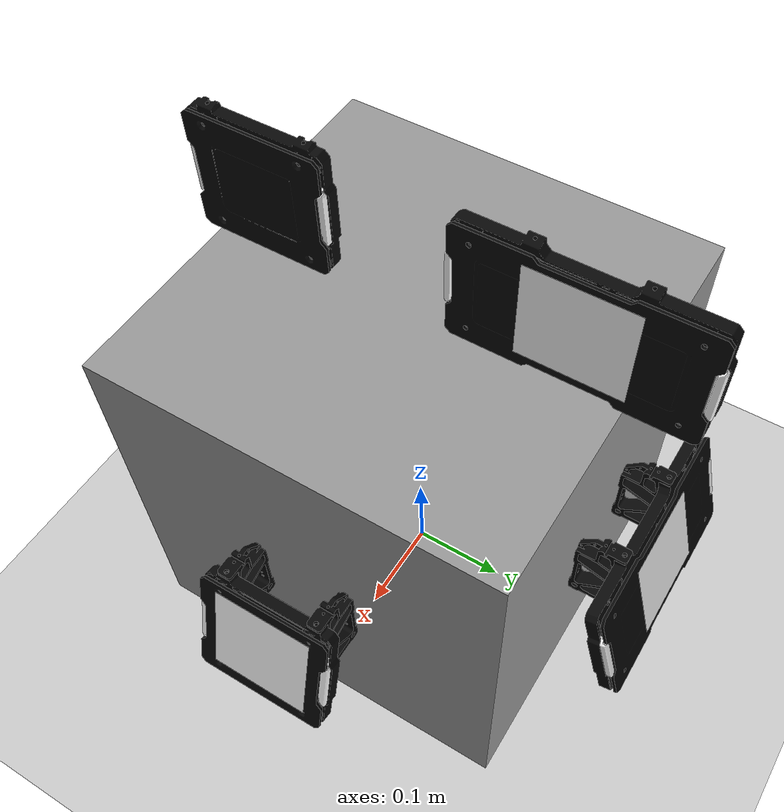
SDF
<sdf version="1.6">
 <world name="rm21_referee_system">
  <physics name="1ms" type="ignored">
   <max_step_size>0.001</max_step_size>
   <real_time_factor>1.0</real_time_factor>
  </physics>
  <plugin filename="ignition-gazebo-physics-system" name="ignition::gazebo::systems::Physics"/>
  <plugin filename="ignition-gazebo-user-commands-system" name="ignition::gazebo::systems::UserCommands"/>
  <plugin filename="ignition-gazebo-scene-broadcaster-system" name="ignition::gazebo::systems::SceneBroadcaster"/>
  <light type="directional" name="sun">
   <pose>0 0 10 0 0 0</pose>
   <diffuse>1 1 1 1</diffuse>
   <specular>0.5 0.5 0.5 1</specular>
   <attenuation>
    <range>1000</range>
    <constant>0.9</constant>
    <linear>0.01</linear>
    <quadratic>0.001</quadratic>
   </attenuation>
   <direction>-0.5 0.1 -0.9</direction>
  </light>
  <model name="ground_plane">
   <static>true</static>
   <link name="link">
    <collision name="collision">
     <geometry><plane><normal>0 0 1</normal><size>100 100</size></plane></geometry>
    </collision>
    <visual name="visual">
     <geometry><plane><normal>0 0 1</normal><size>100 100</size></plane></geometry>
     <material>
      <ambient>0.8 0.8 0.8 1</ambient>
      <diffuse>0.8 0.8 0.8 1</diffuse>
      <specular>0.8 0.8 0.8 1</specular>
     </material>
    </visual>
   </link>
  </model>
  <include><uri>model://rm21_armor_module</uri><name>armor_module</name><pose>0 0 0.2 0 0 0</pose></include>
 </world>
</sdf>

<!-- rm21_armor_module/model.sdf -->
<!-- |    This document was autogenerated by xmacro from model.sdf.xmacro              | -->
<!-- |    EDITING THIS FILE BY HAND IS NOT RECOMMENDED                                 | -->
<sdf version="1.7">
	<!--include defination-->
	<!--rm21_armor_module example-->
	<model name="rm21_armor_module">
		<pose>0 0 0.2 0 0 0</pose>
		<link name="base_link">
			<inertial>
				<mass>0.4</mass>
				<inertia>
					<ixx>0.01066666666666667</ixx>
					<ixy>0</ixy>
					<ixz>0</ixz>
					<iyy>0.01066666666666667</iyy>
					<iyz>0</iyz>
					<izz>0.01066666666666667</izz>
				</inertia>
			</inertial>
			<visual name="visual">
				<geometry>
					<box>
						<size>0.4 0.4 0.4</size>
					</box>
				</geometry>
				<material>
					<ambient>0.6 0.6 0.6 1</ambient>
					<diffuse>0.6 0.6 0.6 1</diffuse>
				</material>
			</visual>
			<collision name="collision">
				<geometry>
					<box>
						<size>0.4 0.4 0.4</size>
					</box>
				</geometry>
			</collision>
		</link>
		<joint name="armor_1_joint" type="fixed">
			<pose relative_to="base_link">0 -0.15 0.2 0 0 0</pose>
			<parent>base_link</parent>
			<child>armor_1</child>
		</joint>
		<link name="armor_1">
			<pose relative_to="armor_1_joint">0 0 0 0 0 0</pose>
			<inertial>
				<pose>0 0 0.065 0 0 0</pose>
				<mass>0.1</mass>
				<inertia>
					<ixx>0.0003065083333333333</ixx>
					<ixy>0</ixy>
					<ixz>0</ixz>
					<iyy>0.0001421774166666667</iyy>
					<iyz>0</iyz>
					<izz>0.0001670190833333333</izz>
				</inertia>
			</inertial>
			<visual name="visual">
				<geometry>
					<mesh>
						<uri>model://rm21_armor_module/meshes/small_armor.dae</uri>
					</mesh>
				</geometry>
			</visual>
			<visual name="target_visual">
				<geometry>
					<mesh>
						<uri>model://rm21_armor_module/meshes/small_armor_target.dae</uri>
					</mesh>
				</geometry>
			</visual>
			<visual name="light_bar_visual">
				<geometry>
					<mesh>
						<uri>model://rm21_armor_module/meshes/small_armor_light_bar.dae</uri>
					</mesh>
				</geometry>
				<material>
					<ambient>1 1 1 1</ambient>
					<diffuse>1 1 1 1</diffuse>
					<specular>1 1 1 1</specular>
				</material>
			</visual>
			<collision name="collision">
				<pose>0 0 0.065 0 0 0</pose>
				<geometry>
					<box>
						<size>0.0127 0.141 0.13</size>
					</box>
				</geometry>
			</collision>
			<collision name="target_collision">
				<geometry>
					<mesh>
						<uri>model://rm21_armor_module/meshes/small_armor_target.dae</uri>
					</mesh>
				</geometry>
			</collision>
		</link>
		<joint name="armor_2_joint" type="fixed">
			<pose relative_to="base_link">0 0.15 0.2 0 0 0</pose>
			<parent>base_link</parent>
			<child>armor_2</child>
		</joint>
		<link name="armor_2">
			<pose relative_to="armor_2_joint">0 0 0 0 0 0</pose>
			<inertial>
				<pose>0 0 0.065 0 0 0</pose>
				<mass>0.1</mass>
				<inertia>
					<ixx>0.0006049666666666666</ixx>
					<ixy>0</ixy>
					<ixz>0</ixz>
					<iyy>0.00014203333333333333</iyy>
					<iyz>0</iyz>
					<izz>0.0004653333333333333</izz>
				</inertia>
			</inertial>
			<visual name="visual">
				<geometry>
					<mesh>
						<uri>model://rm21_armor_module/meshes/large_armor.dae</uri>
					</mesh>
				</geometry>
			</visual>
			<visual name="target_visual">
				<geometry>
					<mesh>
						<uri>model://rm21_armor_module/meshes/large_armor_target.dae</uri>
					</mesh>
				</geometry>
			</visual>
			<visual name="light_bar_visual">
				<geometry>
					<mesh>
						<uri>model://rm21_armor_module/meshes/large_armor_light_bar.dae</uri>
					</mesh>
				</geometry>
				<material>
					<diffuse>1.0 1.0 1.0</diffuse>
					<specular>1.0 1.0 1.0</specular>
					<ambient>1.0 1.0 1.0</ambient>
				</material>
			</visual>
			<visual name="sticker_visual">
				<pose>0.014 0 0.065 1.5708 0 1.5708</pose>
				<geometry>
					<plane>
						<normal>0 0 1</normal>
						<size>0.1 0.1</size>
					</plane>
				</geometry>
				<material>
					<diffuse>1.0 1.0 1.0</diffuse>
					<specular>1.0 1.0 1.0</specular>
					<ambient>1.0 1.0 1.0</ambient>
					<pbr>
						<metal>
							<albedo_map>model://rm21_armor_module/materials/textures/armor_sticker_num1.png</albedo_map>
						</metal>
					</pbr>
				</material>
			</visual>
			<collision name="collision">
				<pose>0 0 0.065 0 0 0</pose>
				<geometry>
					<box>
						<size>0.012 0.236 0.13</size>
					</box>
				</geometry>
			</collision>
			<collision name="target_collision">
				<geometry>
					<mesh>
						<uri>model://rm21_armor_module/meshes/large_armor_target.dae</uri>
					</mesh>
				</geometry>
			</collision>
		</link>
		<joint name="armor_support_frame_3_joint" type="fixed">
			<pose relative_to="base_link">0.2 0 0 0 0 0</pose>
			<parent>base_link</parent>
			<child>armor_support_frame_3</child>
		</joint>
		<link name="armor_support_frame_3">
			<pose relative_to="armor_support_frame_3_joint">0 0 0 0 0 0</pose>
			<inertial>
				<pose>0.035 0 0 0 0 0</pose>
				<mass>0.1</mass>
				<inertia>
					<ixx>0.00023080833333333334</ixx>
					<ixy>0</ixy>
					<ixz>0</ixz>
					<iyy>0.00017014166666666668</iyy>
					<iyz>0</iyz>
					<izz>0.00014468333333333334</izz>
				</inertia>
			</inertial>
			<visual name="visual">
				<geometry>
					<mesh>
						<uri>model://rm21_armor_module/meshes/armor_support_frame.dae</uri>
					</mesh>
				</geometry>
			</visual>
			<collision name="collision">
				<pose>0.015 0 0 0 0 0</pose>
				<geometry>
					<box>
						<size>0.03 0.11 0.08</size>
					</box>
				</geometry>
			</collision>
		</link>
		<joint name="armor_3_joint" type="fixed">
			<pose relative_to="armor_support_frame_3">0.075 0 -0.071 0 -0.262 0</pose>
			<parent>armor_support_frame_3</parent>
			<child>armor_3</child>
		</joint>
		<link name="armor_3">
			<pose relative_to="armor_3_joint">0 0 0 0 0 0</pose>
			<inertial>
				<pose>0 0 0.065 0 0 0</pose>
				<mass>0.1</mass>
				<inertia>
					<ixx>0.0003065083333333333</ixx>
					<ixy>0</ixy>
					<ixz>0</ixz>
					<iyy>0.0001421774166666667</iyy>
					<iyz>0</iyz>
					<izz>0.0001670190833333333</izz>
				</inertia>
			</inertial>
			<visual name="visual">
				<geometry>
					<mesh>
						<uri>model://rm21_armor_module/meshes/small_armor.dae</uri>
					</mesh>
				</geometry>
			</visual>
			<visual name="target_visual">
				<geometry>
					<mesh>
						<uri>model://rm21_armor_module/meshes/small_armor_target.dae</uri>
					</mesh>
				</geometry>
			</visual>
			<visual name="light_bar_visual">
				<geometry>
					<mesh>
						<uri>model://rm21_armor_module/meshes/small_armor_light_bar.dae</uri>
					</mesh>
				</geometry>
				<material>
					<ambient>1 1 1 1</ambient>
					<diffuse>1 1 1 1</diffuse>
					<specular>1 1 1 1</specular>
				</material>
			</visual>
			<visual name="sticker_visual">
				<pose>0.014 0 0.065 1.5708 0 1.5708</pose>
				<geometry>
					<plane>
						<normal>0 0 1</normal>
						<size>0.1 0.1</size>
					</plane>
				</geometry>
				<material>
					<diffuse>1.0 1.0 1.0</diffuse>
					<specular>1.0 1.0 1.0</specular>
					<ambient>1.0 1.0 1.0</ambient>
					<pbr>
						<metal>
							<albedo_map>model://rm21_armor_module/materials/textures/armor_sticker_num2.png</albedo_map>
						</metal>
					</pbr>
				</material>
			</visual>
			<collision name="collision">
				<pose>0 0 0.065 0 0 0</pose>
				<geometry>
					<box>
						<size>0.0127 0.141 0.13</size>
					</box>
				</geometry>
			</collision>
			<collision name="target_collision">
				<geometry>
					<mesh>
						<uri>model://rm21_armor_module/meshes/small_armor_target.dae</uri>
					</mesh>
				</geometry>
			</collision>
		</link>
		<joint name="armor_support_frame_4_joint" type="fixed">
			<pose relative_to="base_link">0 0.2 0 0 0 1.57</pose>
			<parent>base_link</parent>
			<child>armor_support_frame_4</child>
		</joint>
		<link name="armor_support_frame_4">
			<pose relative_to="armor_support_frame_4_joint">0 0 0 0 0 0</pose>
			<inertial>
				<pose>0.035 0 0 0 0 0</pose>
				<mass>0.1</mass>
				<inertia>
					<ixx>0.00023080833333333334</ixx>
					<ixy>0</ixy>
					<ixz>0</ixz>
					<iyy>0.00017014166666666668</iyy>
					<iyz>0</iyz>
					<izz>0.00014468333333333334</izz>
				</inertia>
			</inertial>
			<visual name="visual">
				<geometry>
					<mesh>
						<uri>model://rm21_armor_module/meshes/armor_support_frame.dae</uri>
					</mesh>
				</geometry>
			</visual>
			<collision name="collision">
				<pose>0.015 0 0 0 0 0</pose>
				<geometry>
					<box>
						<size>0.03 0.11 0.08</size>
					</box>
				</geometry>
			</collision>
		</link>
		<joint name="armor_4_joint" type="fixed">
			<pose relative_to="armor_support_frame_4">0.075 0 -0.071 0 -0.262 0</pose>
			<parent>armor_support_frame_4</parent>
			<child>armor_4</child>
		</joint>
		<link name="armor_4">
			<pose relative_to="armor_4_joint">0 0 0 0 0 0</pose>
			<inertial>
				<pose>0 0 0.065 0 0 0</pose>
				<mass>0.1</mass>
				<inertia>
					<ixx>0.0006049666666666666</ixx>
					<ixy>0</ixy>
					<ixz>0</ixz>
					<iyy>0.00014203333333333333</iyy>
					<iyz>0</iyz>
					<izz>0.0004653333333333333</izz>
				</inertia>
			</inertial>
			<visual name="visual">
				<geometry>
					<mesh>
						<uri>model://rm21_armor_module/meshes/large_armor.dae</uri>
					</mesh>
				</geometry>
			</visual>
			<visual name="target_visual">
				<geometry>
					<mesh>
						<uri>model://rm21_armor_module/meshes/large_armor_target.dae</uri>
					</mesh>
				</geometry>
			</visual>
			<visual name="light_bar_visual">
				<geometry>
					<mesh>
						<uri>model://rm21_armor_module/meshes/large_armor_light_bar.dae</uri>
					</mesh>
				</geometry>
				<material>
					<diffuse>1.0 1.0 1.0</diffuse>
					<specular>1.0 1.0 1.0</specular>
					<ambient>1.0 1.0 1.0</ambient>
				</material>
			</visual>
			<visual name="sticker_visual">
				<pose>0.014 0 0.065 1.5708 0 1.5708</pose>
				<geometry>
					<plane>
						<normal>0 0 1</normal>
						<size>0.1 0.1</size>
					</plane>
				</geometry>
				<material>
					<diffuse>1.0 1.0 1.0</diffuse>
					<specular>1.0 1.0 1.0</specular>
					<ambient>1.0 1.0 1.0</ambient>
					<pbr>
						<metal>
							<albedo_map>model://rm21_armor_module/materials/textures/armor_sticker_num2.png</albedo_map>
						</metal>
					</pbr>
				</material>
			</visual>
			<collision name="collision">
				<pose>0 0 0.065 0 0 0</pose>
				<geometry>
					<box>
						<size>0.012 0.236 0.13</size>
					</box>
				</geometry>
			</collision>
			<collision name="target_collision">
				<geometry>
					<mesh>
						<uri>model://rm21_armor_module/meshes/large_armor_target.dae</uri>
					</mesh>
				</geometry>
			</collision>
		</link>
	</model>
</sdf>
